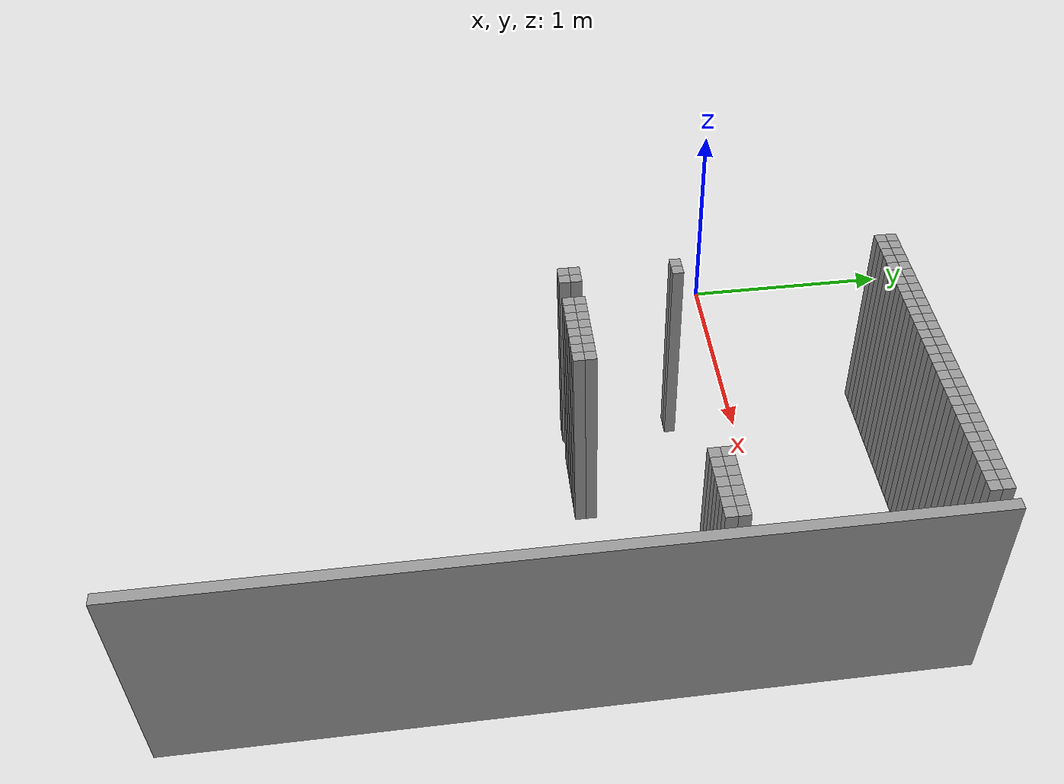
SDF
<sdf version="1.6">
 <model name="optimized_walls">
  <link name="wall_small_52_0">
   <pose>0.8790 0.6800 0.5000 0 0 0</pose>
   <collision name="collision"><geometry><box><size>0.05 0.05 1.0</size></box></geometry></collision>
   <visual name="visual">
    <geometry><box><size>0.05 0.05 1.0</size></box></geometry>
    <material><script><name>Gazebo/Grey</name></script></material>
   </visual>
  </link>
  <link name="wall_small_52_1">
   <pose>0.8790 0.6300 0.5000 0 0 0</pose>
   <collision name="collision"><geometry><box><size>0.05 0.05 1.0</size></box></geometry></collision>
   <visual name="visual">
    <geometry><box><size>0.05 0.05 1.0</size></box></geometry>
    <material><script><name>Gazebo/Grey</name></script></material>
   </visual>
  </link>
  <link name="wall_small_55_0">
   <pose>0.9290 0.6800 0.5000 0 0 0</pose>
   <collision name="collision"><geometry><box><size>0.05 0.05 1.0</size></box></geometry></collision>
   <visual name="visual">
    <geometry><box><size>0.05 0.05 1.0</size></box></geometry>
    <material><script><name>Gazebo/Grey</name></script></material>
   </visual>
  </link>
  <link name="wall_small_55_1">
   <pose>0.9290 0.6300 0.5000 0 0 0</pose>
   <collision name="collision"><geometry><box><size>0.05 0.05 1.0</size></box></geometry></collision>
   <visual name="visual">
    <geometry><box><size>0.05 0.05 1.0</size></box></geometry>
    <material><script><name>Gazebo/Grey</name></script></material>
   </visual>
  </link>
  <link name="wall_small_56_0">
   <pose>0.9290 -0.3200 0.5000 0 0 0</pose>
   <collision name="collision"><geometry><box><size>0.05 0.05 1.0</size></box></geometry></collision>
   <visual name="visual">
    <geometry><box><size>0.05 0.05 1.0</size></box></geometry>
    <material><script><name>Gazebo/Grey</name></script></material>
   </visual>
  </link>
  <link name="wall_small_57_0">
   <pose>0.9290 -0.7700 0.5000 0 0 0</pose>
   <collision name="collision"><geometry><box><size>0.05 0.05 1.0</size></box></geometry></collision>
   <visual name="visual">
    <geometry><box><size>0.05 0.05 1.0</size></box></geometry>
    <material><script><name>Gazebo/Grey</name></script></material>
   </visual>
  </link>
  <link name="wall_small_57_1">
   <pose>0.9290 -0.8200 0.5000 0 0 0</pose>
   <collision name="collision"><geometry><box><size>0.05 0.05 1.0</size></box></geometry></collision>
   <visual name="visual">
    <geometry><box><size>0.05 0.05 1.0</size></box></geometry>
    <material><script><name>Gazebo/Grey</name></script></material>
   </visual>
  </link>
  <link name="wall_small_58_0">
   <pose>0.9790 0.6800 0.5000 0 0 0</pose>
   <collision name="collision"><geometry><box><size>0.05 0.05 1.0</size></box></geometry></collision>
   <visual name="visual">
    <geometry><box><size>0.05 0.05 1.0</size></box></geometry>
    <material><script><name>Gazebo/Grey</name></script></material>
   </visual>
  </link>
  <link name="wall_small_58_1">
   <pose>0.9790 0.6300 0.5000 0 0 0</pose>
   <collision name="collision"><geometry><box><size>0.05 0.05 1.0</size></box></geometry></collision>
   <visual name="visual">
    <geometry><box><size>0.05 0.05 1.0</size></box></geometry>
    <material><script><name>Gazebo/Grey</name></script></material>
   </visual>
  </link>
  <link name="wall_small_59_0">
   <pose>0.9790 -0.3200 0.5000 0 0 0</pose>
   <collision name="collision"><geometry><box><size>0.05 0.05 1.0</size></box></geometry></collision>
   <visual name="visual">
    <geometry><box><size>0.05 0.05 1.0</size></box></geometry>
    <material><script><name>Gazebo/Grey</name></script></material>
   </visual>
  </link>
  <link name="wall_small_60_0">
   <pose>0.9790 -0.7700 0.5000 0 0 0</pose>
   <collision name="collision"><geometry><box><size>0.05 0.05 1.0</size></box></geometry></collision>
   <visual name="visual">
    <geometry><box><size>0.05 0.05 1.0</size></box></geometry>
    <material><script><name>Gazebo/Grey</name></script></material>
   </visual>
  </link>
  <link name="wall_small_60_1">
   <pose>0.9790 -0.8200 0.5000 0 0 0</pose>
   <collision name="collision"><geometry><box><size>0.05 0.05 1.0</size></box></geometry></collision>
   <visual name="visual">
    <geometry><box><size>0.05 0.05 1.0</size></box></geometry>
    <material><script><name>Gazebo/Grey</name></script></material>
   </visual>
  </link>
  <link name="wall_small_61_0">
   <pose>1.0290 0.6800 0.5000 0 0 0</pose>
   <collision name="collision"><geometry><box><size>0.05 0.05 1.0</size></box></geometry></collision>
   <visual name="visual">
    <geometry><box><size>0.05 0.05 1.0</size></box></geometry>
    <material><script><name>Gazebo/Grey</name></script></material>
   </visual>
  </link>
  <link name="wall_small_61_1">
   <pose>1.0290 0.6300 0.5000 0 0 0</pose>
   <collision name="collision"><geometry><box><size>0.05 0.05 1.0</size></box></geometry></collision>
   <visual name="visual">
    <geometry><box><size>0.05 0.05 1.0</size></box></geometry>
    <material><script><name>Gazebo/Grey</name></script></material>
   </visual>
  </link>
  <link name="wall_small_63_0">
   <pose>1.0790 0.6800 0.5000 0 0 0</pose>
   <collision name="collision"><geometry><box><size>0.05 0.05 1.0</size></box></geometry></collision>
   <visual name="visual">
    <geometry><box><size>0.05 0.05 1.0</size></box></geometry>
    <material><script><name>Gazebo/Grey</name></script></material>
   </visual>
  </link>
  <link name="wall_small_63_1">
   <pose>1.0790 0.6300 0.5000 0 0 0</pose>
   <collision name="collision"><geometry><box><size>0.05 0.05 1.0</size></box></geometry></collision>
   <visual name="visual">
    <geometry><box><size>0.05 0.05 1.0</size></box></geometry>
    <material><script><name>Gazebo/Grey</name></script></material>
   </visual>
  </link>
  <link name="wall_small_65_0">
   <pose>1.1290 0.6800 0.5000 0 0 0</pose>
   <collision name="collision"><geometry><box><size>0.05 0.05 1.0</size></box></geometry></collision>
   <visual name="visual">
    <geometry><box><size>0.05 0.05 1.0</size></box></geometry>
    <material><script><name>Gazebo/Grey</name></script></material>
   </visual>
  </link>
  <link name="wall_small_65_1">
   <pose>1.1290 0.6300 0.5000 0 0 0</pose>
   <collision name="collision"><geometry><box><size>0.05 0.05 1.0</size></box></geometry></collision>
   <visual name="visual">
    <geometry><box><size>0.05 0.05 1.0</size></box></geometry>
    <material><script><name>Gazebo/Grey</name></script></material>
   </visual>
  </link>
  <link name="wall_small_66_0">
   <pose>1.1290 -0.7700 0.5000 0 0 0</pose>
   <collision name="collision"><geometry><box><size>0.05 0.05 1.0</size></box></geometry></collision>
   <visual name="visual">
    <geometry><box><size>0.05 0.05 1.0</size></box></geometry>
    <material><script><name>Gazebo/Grey</name></script></material>
   </visual>
  </link>
  <link name="wall_small_66_1">
   <pose>1.1290 -0.8200 0.5000 0 0 0</pose>
   <collision name="collision"><geometry><box><size>0.05 0.05 1.0</size></box></geometry></collision>
   <visual name="visual">
    <geometry><box><size>0.05 0.05 1.0</size></box></geometry>
    <material><script><name>Gazebo/Grey</name></script></material>
   </visual>
  </link>
  <link name="wall_small_69_0">
   <pose>1.1790 0.6800 0.5000 0 0 0</pose>
   <collision name="collision"><geometry><box><size>0.05 0.05 1.0</size></box></geometry></collision>
   <visual name="visual">
    <geometry><box><size>0.05 0.05 1.0</size></box></geometry>
    <material><script><name>Gazebo/Grey</name></script></material>
   </visual>
  </link>
  <link name="wall_small_69_1">
   <pose>1.1790 0.6300 0.5000 0 0 0</pose>
   <collision name="collision"><geometry><box><size>0.05 0.05 1.0</size></box></geometry></collision>
   <visual name="visual">
    <geometry><box><size>0.05 0.05 1.0</size></box></geometry>
    <material><script><name>Gazebo/Grey</name></script></material>
   </visual>
  </link>
  <link name="wall_small_70_0">
   <pose>1.1790 -0.7700 0.5000 0 0 0</pose>
   <collision name="collision"><geometry><box><size>0.05 0.05 1.0</size></box></geometry></collision>
   <visual name="visual">
    <geometry><box><size>0.05 0.05 1.0</size></box></geometry>
    <material><script><name>Gazebo/Grey</name></script></material>
   </visual>
  </link>
  <link name="wall_small_70_1">
   <pose>1.1790 -0.8200 0.5000 0 0 0</pose>
   <collision name="collision"><geometry><box><size>0.05 0.05 1.0</size></box></geometry></collision>
   <visual name="visual">
    <geometry><box><size>0.05 0.05 1.0</size></box></geometry>
    <material><script><name>Gazebo/Grey</name></script></material>
   </visual>
  </link>
  <link name="wall_small_73_0">
   <pose>1.2290 0.6800 0.5000 0 0 0</pose>
   <collision name="collision"><geometry><box><size>0.05 0.05 1.0</size></box></geometry></collision>
   <visual name="visual">
    <geometry><box><size>0.05 0.05 1.0</size></box></geometry>
    <material><script><name>Gazebo/Grey</name></script></material>
   </visual>
  </link>
  <link name="wall_small_73_1">
   <pose>1.2290 0.6300 0.5000 0 0 0</pose>
   <collision name="collision"><geometry><box><size>0.05 0.05 1.0</size></box></geometry></collision>
   <visual name="visual">
    <geometry><box><size>0.05 0.05 1.0</size></box></geometry>
    <material><script><name>Gazebo/Grey</name></script></material>
   </visual>
  </link>
  <link name="wall_small_74_0">
   <pose>1.2290 -0.7700 0.5000 0 0 0</pose>
   <collision name="collision"><geometry><box><size>0.05 0.05 1.0</size></box></geometry></collision>
   <visual name="visual">
    <geometry><box><size>0.05 0.05 1.0</size></box></geometry>
    <material><script><name>Gazebo/Grey</name></script></material>
   </visual>
  </link>
  <link name="wall_small_74_1">
   <pose>1.2290 -0.8200 0.5000 0 0 0</pose>
   <collision name="collision"><geometry><box><size>0.05 0.05 1.0</size></box></geometry></collision>
   <visual name="visual">
    <geometry><box><size>0.05 0.05 1.0</size></box></geometry>
    <material><script><name>Gazebo/Grey</name></script></material>
   </visual>
  </link>
  <link name="wall_small_77_0">
   <pose>1.2790 0.6800 0.5000 0 0 0</pose>
   <collision name="collision"><geometry><box><size>0.05 0.05 1.0</size></box></geometry></collision>
   <visual name="visual">
    <geometry><box><size>0.05 0.05 1.0</size></box></geometry>
    <material><script><name>Gazebo/Grey</name></script></material>
   </visual>
  </link>
  <link name="wall_small_77_1">
   <pose>1.2790 0.6300 0.5000 0 0 0</pose>
   <collision name="collision"><geometry><box><size>0.05 0.05 1.0</size></box></geometry></collision>
   <visual name="visual">
    <geometry><box><size>0.05 0.05 1.0</size></box></geometry>
    <material><script><name>Gazebo/Grey</name></script></material>
   </visual>
  </link>
  <link name="wall_small_78_0">
   <pose>1.2790 -0.7700 0.5000 0 0 0</pose>
   <collision name="collision"><geometry><box><size>0.05 0.05 1.0</size></box></geometry></collision>
   <visual name="visual">
    <geometry><box><size>0.05 0.05 1.0</size></box></geometry>
    <material><script><name>Gazebo/Grey</name></script></material>
   </visual>
  </link>
  <link name="wall_small_78_1">
   <pose>1.2790 -0.8200 0.5000 0 0 0</pose>
   <collision name="collision"><geometry><box><size>0.05 0.05 1.0</size></box></geometry></collision>
   <visual name="visual">
    <geometry><box><size>0.05 0.05 1.0</size></box></geometry>
    <material><script><name>Gazebo/Grey</name></script></material>
   </visual>
  </link>
  <link name="wall_small_81_0">
   <pose>1.3290 0.6800 0.5000 0 0 0</pose>
   <collision name="collision"><geometry><box><size>0.05 0.05 1.0</size></box></geometry></collision>
   <visual name="visual">
    <geometry><box><size>0.05 0.05 1.0</size></box></geometry>
    <material><script><name>Gazebo/Grey</name></script></material>
   </visual>
  </link>
  <link name="wall_small_81_1">
   <pose>1.3290 0.6300 0.5000 0 0 0</pose>
   <collision name="collision"><geometry><box><size>0.05 0.05 1.0</size></box></geometry></collision>
   <visual name="visual">
    <geometry><box><size>0.05 0.05 1.0</size></box></geometry>
    <material><script><name>Gazebo/Grey</name></script></material>
   </visual>
  </link>
  <link name="wall_small_82_0">
   <pose>1.3290 -0.7700 0.5000 0 0 0</pose>
   <collision name="collision"><geometry><box><size>0.05 0.05 1.0</size></box></geometry></collision>
   <visual name="visual">
    <geometry><box><size>0.05 0.05 1.0</size></box></geometry>
    <material><script><name>Gazebo/Grey</name></script></material>
   </visual>
  </link>
  <link name="wall_small_82_1">
   <pose>1.3290 -0.8200 0.5000 0 0 0</pose>
   <collision name="collision"><geometry><box><size>0.05 0.05 1.0</size></box></geometry></collision>
   <visual name="visual">
    <geometry><box><size>0.05 0.05 1.0</size></box></geometry>
    <material><script><name>Gazebo/Grey</name></script></material>
   </visual>
  </link>
  <link name="wall_small_85_0">
   <pose>1.3790 0.6800 0.5000 0 0 0</pose>
   <collision name="collision"><geometry><box><size>0.05 0.05 1.0</size></box></geometry></collision>
   <visual name="visual">
    <geometry><box><size>0.05 0.05 1.0</size></box></geometry>
    <material><script><name>Gazebo/Grey</name></script></material>
   </visual>
  </link>
  <link name="wall_small_85_1">
   <pose>1.3790 0.6300 0.5000 0 0 0</pose>
   <collision name="collision"><geometry><box><size>0.05 0.05 1.0</size></box></geometry></collision>
   <visual name="visual">
    <geometry><box><size>0.05 0.05 1.0</size></box></geometry>
    <material><script><name>Gazebo/Grey</name></script></material>
   </visual>
  </link>
  <link name="wall_small_86_0">
   <pose>1.3790 -0.7700 0.5000 0 0 0</pose>
   <collision name="collision"><geometry><box><size>0.05 0.05 1.0</size></box></geometry></collision>
   <visual name="visual">
    <geometry><box><size>0.05 0.05 1.0</size></box></geometry>
    <material><script><name>Gazebo/Grey</name></script></material>
   </visual>
  </link>
  <link name="wall_small_86_1">
   <pose>1.3790 -0.8200 0.5000 0 0 0</pose>
   <collision name="collision"><geometry><box><size>0.05 0.05 1.0</size></box></geometry></collision>
   <visual name="visual">
    <geometry><box><size>0.05 0.05 1.0</size></box></geometry>
    <material><script><name>Gazebo/Grey</name></script></material>
   </visual>
  </link>
  <link name="wall_small_89_0">
   <pose>1.4290 0.6800 0.5000 0 0 0</pose>
   <collision name="collision"><geometry><box><size>0.05 0.05 1.0</size></box></geometry></collision>
   <visual name="visual">
    <geometry><box><size>0.05 0.05 1.0</size></box></geometry>
    <material><script><name>Gazebo/Grey</name></script></material>
   </visual>
  </link>
  <link name="wall_small_89_1">
   <pose>1.4290 0.6300 0.5000 0 0 0</pose>
   <collision name="collision"><geometry><box><size>0.05 0.05 1.0</size></box></geometry></collision>
   <visual name="visual">
    <geometry><box><size>0.05 0.05 1.0</size></box></geometry>
    <material><script><name>Gazebo/Grey</name></script></material>
   </visual>
  </link>
  <link name="wall_small_90_0">
   <pose>1.4290 -0.7700 0.5000 0 0 0</pose>
   <collision name="collision"><geometry><box><size>0.05 0.05 1.0</size></box></geometry></collision>
   <visual name="visual">
    <geometry><box><size>0.05 0.05 1.0</size></box></geometry>
    <material><script><name>Gazebo/Grey</name></script></material>
   </visual>
  </link>
  <link name="wall_small_90_1">
   <pose>1.4290 -0.8200 0.5000 0 0 0</pose>
   <collision name="collision"><geometry><box><size>0.05 0.05 1.0</size></box></geometry></collision>
   <visual name="visual">
    <geometry><box><size>0.05 0.05 1.0</size></box></geometry>
    <material><script><name>Gazebo/Grey</name></script></material>
   </visual>
  </link>
  <link name="wall_small_93_0">
   <pose>1.4790 0.6800 0.5000 0 0 0</pose>
   <collision name="collision"><geometry><box><size>0.05 0.05 1.0</size></box></geometry></collision>
   <visual name="visual">
    <geometry><box><size>0.05 0.05 1.0</size></box></geometry>
    <material><script><name>Gazebo/Grey</name></script></material>
   </visual>
  </link>
  <link name="wall_small_93_1">
   <pose>1.4790 0.6300 0.5000 0 0 0</pose>
   <collision name="collision"><geometry><box><size>0.05 0.05 1.0</size></box></geometry></collision>
   <visual name="visual">
    <geometry><box><size>0.05 0.05 1.0</size></box></geometry>
    <material><script><name>Gazebo/Grey</name></script></material>
   </visual>
  </link>
  <link name="wall_small_94_0">
   <pose>1.4790 -0.7700 0.5000 0 0 0</pose>
   <collision name="collision"><geometry><box><size>0.05 0.05 1.0</size></box></geometry></collision>
   <visual name="visual">
    <geometry><box><size>0.05 0.05 1.0</size></box></geometry>
    <material><script><name>Gazebo/Grey</name></script></material>
   </visual>
  </link>
  <link name="wall_small_94_1">
   <pose>1.4790 -0.8200 0.5000 0 0 0</pose>
   <collision name="collision"><geometry><box><size>0.05 0.05 1.0</size></box></geometry></collision>
   <visual name="visual">
    <geometry><box><size>0.05 0.05 1.0</size></box></geometry>
    <material><script><name>Gazebo/Grey</name></script></material>
   </visual>
  </link>
  <link name="wall_small_97_0">
   <pose>1.5290 0.6800 0.5000 0 0 0</pose>
   <collision name="collision"><geometry><box><size>0.05 0.05 1.0</size></box></geometry></collision>
   <visual name="visual">
    <geometry><box><size>0.05 0.05 1.0</size></box></geometry>
    <material><script><name>Gazebo/Grey</name></script></material>
   </visual>
  </link>
  <link name="wall_small_97_1">
   <pose>1.5290 0.6300 0.5000 0 0 0</pose>
   <collision name="collision"><geometry><box><size>0.05 0.05 1.0</size></box></geometry></collision>
   <visual name="visual">
    <geometry><box><size>0.05 0.05 1.0</size></box></geometry>
    <material><script><name>Gazebo/Grey</name></script></material>
   </visual>
  </link>
  <link name="wall_small_99_0">
   <pose>1.5790 0.6800 0.5000 0 0 0</pose>
   <collision name="collision"><geometry><box><size>0.05 0.05 1.0</size></box></geometry></collision>
   <visual name="visual">
    <geometry><box><size>0.05 0.05 1.0</size></box></geometry>
    <material><script><name>Gazebo/Grey</name></script></material>
   </visual>
  </link>
  <link name="wall_small_99_1">
   <pose>1.5790 0.6300 0.5000 0 0 0</pose>
   <collision name="collision"><geometry><box><size>0.05 0.05 1.0</size></box></geometry></collision>
   <visual name="visual">
    <geometry><box><size>0.05 0.05 1.0</size></box></geometry>
    <material><script><name>Gazebo/Grey</name></script></material>
   </visual>
  </link>
  <link name="wall_small_101_0">
   <pose>1.6290 0.6800 0.5000 0 0 0</pose>
   <collision name="collision"><geometry><box><size>0.05 0.05 1.0</size></box></geometry></collision>
   <visual name="visual">
    <geometry><box><size>0.05 0.05 1.0</size></box></geometry>
    <material><script><name>Gazebo/Grey</name></script></material>
   </visual>
  </link>
  <link name="wall_small_101_1">
   <pose>1.6290 0.6300 0.5000 0 0 0</pose>
   <collision name="collision"><geometry><box><size>0.05 0.05 1.0</size></box></geometry></collision>
   <visual name="visual">
    <geometry><box><size>0.05 0.05 1.0</size></box></geometry>
    <material><script><name>Gazebo/Grey</name></script></material>
   </visual>
  </link>
  <link name="wall_small_103_0">
   <pose>1.6790 0.6800 0.5000 0 0 0</pose>
   <collision name="collision"><geometry><box><size>0.05 0.05 1.0</size></box></geometry></collision>
   <visual name="visual">
    <geometry><box><size>0.05 0.05 1.0</size></box></geometry>
    <material><script><name>Gazebo/Grey</name></script></material>
   </visual>
  </link>
  <link name="wall_small_103_1">
   <pose>1.6790 0.6300 0.5000 0 0 0</pose>
   <collision name="collision"><geometry><box><size>0.05 0.05 1.0</size></box></geometry></collision>
   <visual name="visual">
    <geometry><box><size>0.05 0.05 1.0</size></box></geometry>
    <material><script><name>Gazebo/Grey</name></script></material>
   </visual>
  </link>
  <link name="wall_small_105_0">
   <pose>1.7290 0.6800 0.5000 0 0 0</pose>
   <collision name="collision"><geometry><box><size>0.05 0.05 1.0</size></box></geometry></collision>
   <visual name="visual">
    <geometry><box><size>0.05 0.05 1.0</size></box></geometry>
    <material><script><name>Gazebo/Grey</name></script></material>
   </visual>
  </link>
  <link name="wall_small_105_1">
   <pose>1.7290 0.6300 0.5000 0 0 0</pose>
   <collision name="collision"><geometry><box><size>0.05 0.05 1.0</size></box></geometry></collision>
   <visual name="visual">
    <geometry><box><size>0.05 0.05 1.0</size></box></geometry>
    <material><script><name>Gazebo/Grey</name></script></material>
   </visual>
  </link>
  <link name="wall_small_107_0">
   <pose>1.7790 0.6800 0.5000 0 0 0</pose>
   <collision name="collision"><geometry><box><size>0.05 0.05 1.0</size></box></geometry></collision>
   <visual name="visual">
    <geometry><box><size>0.05 0.05 1.0</size></box></geometry>
    <material><script><name>Gazebo/Grey</name></script></material>
   </visual>
  </link>
  <link name="wall_small_107_1">
   <pose>1.7790 0.6300 0.5000 0 0 0</pose>
   <collision name="collision"><geometry><box><size>0.05 0.05 1.0</size></box></geometry></collision>
   <visual name="visual">
    <geometry><box><size>0.05 0.05 1.0</size></box></geometry>
    <material><script><name>Gazebo/Grey</name></script></material>
   </visual>
  </link>
  <link name="wall_small_109_0">
   <pose>1.8290 0.6800 0.5000 0 0 0</pose>
   <collision name="collision"><geometry><box><size>0.05 0.05 1.0</size></box></geometry></collision>
   <visual name="visual">
    <geometry><box><size>0.05 0.05 1.0</size></box></geometry>
    <material><script><name>Gazebo/Grey</name></script></material>
   </visual>
  </link>
  <link name="wall_small_109_1">
   <pose>1.8290 0.6300 0.5000 0 0 0</pose>
   <collision name="collision"><geometry><box><size>0.05 0.05 1.0</size></box></geometry></collision>
   <visual name="visual">
    <geometry><box><size>0.05 0.05 1.0</size></box></geometry>
    <material><script><name>Gazebo/Grey</name></script></material>
   </visual>
  </link>
  <link name="wall_small_111_0">
   <pose>1.8790 0.6800 0.5000 0 0 0</pose>
   <collision name="collision"><geometry><box><size>0.05 0.05 1.0</size></box></geometry></collision>
   <visual name="visual">
    <geometry><box><size>0.05 0.05 1.0</size></box></geometry>
    <material><script><name>Gazebo/Grey</name></script></material>
   </visual>
  </link>
  <link name="wall_small_111_1">
   <pose>1.8790 0.6300 0.5000 0 0 0</pose>
   <collision name="collision"><geometry><box><size>0.05 0.05 1.0</size></box></geometry></collision>
   <visual name="visual">
    <geometry><box><size>0.05 0.05 1.0</size></box></geometry>
    <material><script><name>Gazebo/Grey</name></script></material>
   </visual>
  </link>
  <link name="wall_small_113_0">
   <pose>1.9290 0.6800 0.5000 0 0 0</pose>
   <collision name="collision"><geometry><box><size>0.05 0.05 1.0</size></box></geometry></collision>
   <visual name="visual">
    <geometry><box><size>0.05 0.05 1.0</size></box></geometry>
    <material><script><name>Gazebo/Grey</name></script></material>
   </visual>
  </link>
  <link name="wall_small_113_1">
   <pose>1.9290 0.6300 0.5000 0 0 0</pose>
   <collision name="collision"><geometry><box><size>0.05 0.05 1.0</size></box></geometry></collision>
   <visual name="visual">
    <geometry><box><size>0.05 0.05 1.0</size></box></geometry>
    <material><script><name>Gazebo/Grey</name></script></material>
   </visual>
  </link>
  <link name="wall_small_115_0">
   <pose>1.9790 0.6800 0.5000 0 0 0</pose>
   <collision name="collision"><geometry><box><size>0.05 0.05 1.0</size></box></geometry></collision>
   <visual name="visual">
    <geometry><box><size>0.05 0.05 1.0</size></box></geometry>
    <material><script><name>Gazebo/Grey</name></script></material>
   </visual>
  </link>
  <link name="wall_small_115_1">
   <pose>1.9790 0.6300 0.5000 0 0 0</pose>
   <collision name="collision"><geometry><box><size>0.05 0.05 1.0</size></box></geometry></collision>
   <visual name="visual">
    <geometry><box><size>0.05 0.05 1.0</size></box></geometry>
    <material><script><name>Gazebo/Grey</name></script></material>
   </visual>
  </link>
  <link name="wall_small_117_0">
   <pose>2.0290 0.6800 0.5000 0 0 0</pose>
   <collision name="collision"><geometry><box><size>0.05 0.05 1.0</size></box></geometry></collision>
   <visual name="visual">
    <geometry><box><size>0.05 0.05 1.0</size></box></geometry>
    <material><script><name>Gazebo/Grey</name></script></material>
   </visual>
  </link>
  <link name="wall_small_117_1">
   <pose>2.0290 0.6300 0.5000 0 0 0</pose>
   <collision name="collision"><geometry><box><size>0.05 0.05 1.0</size></box></geometry></collision>
   <visual name="visual">
    <geometry><box><size>0.05 0.05 1.0</size></box></geometry>
    <material><script><name>Gazebo/Grey</name></script></material>
   </visual>
  </link>
  <link name="wall_small_119_0">
   <pose>2.0790 0.6800 0.5000 0 0 0</pose>
   <collision name="collision"><geometry><box><size>0.05 0.05 1.0</size></box></geometry></collision>
   <visual name="visual">
    <geometry><box><size>0.05 0.05 1.0</size></box></geometry>
    <material><script><name>Gazebo/Grey</name></script></material>
   </visual>
  </link>
  <link name="wall_small_119_1">
   <pose>2.0790 0.6300 0.5000 0 0 0</pose>
   <collision name="collision"><geometry><box><size>0.05 0.05 1.0</size></box></geometry></collision>
   <visual name="visual">
    <geometry><box><size>0.05 0.05 1.0</size></box></geometry>
    <material><script><name>Gazebo/Grey</name></script></material>
   </visual>
  </link>
  <link name="wall_small_120_0">
   <pose>2.0790 -0.3200 0.5000 0 0 0</pose>
   <collision name="collision"><geometry><box><size>0.05 0.05 1.0</size></box></geometry></collision>
   <visual name="visual">
    <geometry><box><size>0.05 0.05 1.0</size></box></geometry>
    <material><script><name>Gazebo/Grey</name></script></material>
   </visual>
  </link>
  <link name="wall_small_120_1">
   <pose>2.0790 -0.3700 0.5000 0 0 0</pose>
   <collision name="collision"><geometry><box><size>0.05 0.05 1.0</size></box></geometry></collision>
   <visual name="visual">
    <geometry><box><size>0.05 0.05 1.0</size></box></geometry>
    <material><script><name>Gazebo/Grey</name></script></material>
   </visual>
  </link>
  <link name="wall_small_124_0">
   <pose>2.1290 0.6800 0.5000 0 0 0</pose>
   <collision name="collision"><geometry><box><size>0.05 0.05 1.0</size></box></geometry></collision>
   <visual name="visual">
    <geometry><box><size>0.05 0.05 1.0</size></box></geometry>
    <material><script><name>Gazebo/Grey</name></script></material>
   </visual>
  </link>
  <link name="wall_small_124_1">
   <pose>2.1290 0.6300 0.5000 0 0 0</pose>
   <collision name="collision"><geometry><box><size>0.05 0.05 1.0</size></box></geometry></collision>
   <visual name="visual">
    <geometry><box><size>0.05 0.05 1.0</size></box></geometry>
    <material><script><name>Gazebo/Grey</name></script></material>
   </visual>
  </link>
  <link name="wall_small_125_0">
   <pose>2.1290 -0.3200 0.5000 0 0 0</pose>
   <collision name="collision"><geometry><box><size>0.05 0.05 1.0</size></box></geometry></collision>
   <visual name="visual">
    <geometry><box><size>0.05 0.05 1.0</size></box></geometry>
    <material><script><name>Gazebo/Grey</name></script></material>
   </visual>
  </link>
  <link name="wall_small_125_1">
   <pose>2.1290 -0.3700 0.5000 0 0 0</pose>
   <collision name="collision"><geometry><box><size>0.05 0.05 1.0</size></box></geometry></collision>
   <visual name="visual">
    <geometry><box><size>0.05 0.05 1.0</size></box></geometry>
    <material><script><name>Gazebo/Grey</name></script></material>
   </visual>
  </link>
  <link name="wall_small_129_0">
   <pose>2.1790 0.6800 0.5000 0 0 0</pose>
   <collision name="collision"><geometry><box><size>0.05 0.05 1.0</size></box></geometry></collision>
   <visual name="visual">
    <geometry><box><size>0.05 0.05 1.0</size></box></geometry>
    <material><script><name>Gazebo/Grey</name></script></material>
   </visual>
  </link>
  <link name="wall_small_129_1">
   <pose>2.1790 0.6300 0.5000 0 0 0</pose>
   <collision name="collision"><geometry><box><size>0.05 0.05 1.0</size></box></geometry></collision>
   <visual name="visual">
    <geometry><box><size>0.05 0.05 1.0</size></box></geometry>
    <material><script><name>Gazebo/Grey</name></script></material>
   </visual>
  </link>
  <link name="wall_small_130_0">
   <pose>2.1790 -0.3200 0.5000 0 0 0</pose>
   <collision name="collision"><geometry><box><size>0.05 0.05 1.0</size></box></geometry></collision>
   <visual name="visual">
    <geometry><box><size>0.05 0.05 1.0</size></box></geometry>
    <material><script><name>Gazebo/Grey</name></script></material>
   </visual>
  </link>
  <link name="wall_small_130_1">
   <pose>2.1790 -0.3700 0.5000 0 0 0</pose>
   <collision name="collision"><geometry><box><size>0.05 0.05 1.0</size></box></geometry></collision>
   <visual name="visual">
    <geometry><box><size>0.05 0.05 1.0</size></box></geometry>
    <material><script><name>Gazebo/Grey</name></script></material>
   </visual>
  </link>
  <link name="wall_small_134_0">
   <pose>2.2290 0.6800 0.5000 0 0 0</pose>
   <collision name="collision"><geometry><box><size>0.05 0.05 1.0</size></box></geometry></collision>
   <visual name="visual">
    <geometry><box><size>0.05 0.05 1.0</size></box></geometry>
    <material><script><name>Gazebo/Grey</name></script></material>
   </visual>
  </link>
  <link name="wall_small_134_1">
   <pose>2.2290 0.6300 0.5000 0 0 0</pose>
   <collision name="collision"><geometry><box><size>0.05 0.05 1.0</size></box></geometry></collision>
   <visual name="visual">
    <geometry><box><size>0.05 0.05 1.0</size></box></geometry>
    <material><script><name>Gazebo/Grey</name></script></material>
   </visual>
  </link>
  <link name="wall_small_135_0">
   <pose>2.2290 -0.3200 0.5000 0 0 0</pose>
   <collision name="collision"><geometry><box><size>0.05 0.05 1.0</size></box></geometry></collision>
   <visual name="visual">
    <geometry><box><size>0.05 0.05 1.0</size></box></geometry>
    <material><script><name>Gazebo/Grey</name></script></material>
   </visual>
  </link>
  <link name="wall_small_135_1">
   <pose>2.2290 -0.3700 0.5000 0 0 0</pose>
   <collision name="collision"><geometry><box><size>0.05 0.05 1.0</size></box></geometry></collision>
   <visual name="visual">
    <geometry><box><size>0.05 0.05 1.0</size></box></geometry>
    <material><script><name>Gazebo/Grey</name></script></material>
   </visual>
  </link>
  <link name="wall_small_139_0">
   <pose>2.2790 0.6800 0.5000 0 0 0</pose>
   <collision name="collision"><geometry><box><size>0.05 0.05 1.0</size></box></geometry></collision>
   <visual name="visual">
    <geometry><box><size>0.05 0.05 1.0</size></box></geometry>
    <material><script><name>Gazebo/Grey</name></script></material>
   </visual>
  </link>
  <link name="wall_small_139_1">
   <pose>2.2790 0.6300 0.5000 0 0 0</pose>
   <collision name="collision"><geometry><box><size>0.05 0.05 1.0</size></box></geometry></collision>
   <visual name="visual">
    <geometry><box><size>0.05 0.05 1.0</size></box></geometry>
    <material><script><name>Gazebo/Grey</name></script></material>
   </visual>
  </link>
  <link name="wall_small_140_0">
   <pose>2.2790 -0.3200 0.5000 0 0 0</pose>
   <collision name="collision"><geometry><box><size>0.05 0.05 1.0</size></box></geometry></collision>
   <visual name="visual">
    <geometry><box><size>0.05 0.05 1.0</size></box></geometry>
    <material><script><name>Gazebo/Grey</name></script></material>
   </visual>
  </link>
  <link name="wall_small_140_1">
   <pose>2.2790 -0.3700 0.5000 0 0 0</pose>
   <collision name="collision"><geometry><box><size>0.05 0.05 1.0</size></box></geometry></collision>
   <visual name="visual">
    <geometry><box><size>0.05 0.05 1.0</size></box></geometry>
    <material><script><name>Gazebo/Grey</name></script></material>
   </visual>
  </link>
  <link name="wall_small_144_0">
   <pose>2.3290 0.6800 0.5000 0 0 0</pose>
   <collision name="collision"><geometry><box><size>0.05 0.05 1.0</size></box></geometry></collision>
   <visual name="visual">
    <geometry><box><size>0.05 0.05 1.0</size></box></geometry>
    <material><script><name>Gazebo/Grey</name></script></material>
   </visual>
  </link>
  <link name="wall_small_144_1">
   <pose>2.3290 0.6300 0.5000 0 0 0</pose>
   <collision name="collision"><geometry><box><size>0.05 0.05 1.0</size></box></geometry></collision>
   <visual name="visual">
    <geometry><box><size>0.05 0.05 1.0</size></box></geometry>
    <material><script><name>Gazebo/Grey</name></script></material>
   </visual>
  </link>
  <link name="wall_small_145_0">
   <pose>2.3290 -0.3200 0.5000 0 0 0</pose>
   <collision name="collision"><geometry><box><size>0.05 0.05 1.0</size></box></geometry></collision>
   <visual name="visual">
    <geometry><box><size>0.05 0.05 1.0</size></box></geometry>
    <material><script><name>Gazebo/Grey</name></script></material>
   </visual>
  </link>
  <link name="wall_small_145_1">
   <pose>2.3290 -0.3700 0.5000 0 0 0</pose>
   <collision name="collision"><geometry><box><size>0.05 0.05 1.0</size></box></geometry></collision>
   <visual name="visual">
    <geometry><box><size>0.05 0.05 1.0</size></box></geometry>
    <material><script><name>Gazebo/Grey</name></script></material>
   </visual>
  </link>
  <link name="wall_small_149_0">
   <pose>2.3790 0.6800 0.5000 0 0 0</pose>
   <collision name="collision"><geometry><box><size>0.05 0.05 1.0</size></box></geometry></collision>
   <visual name="visual">
    <geometry><box><size>0.05 0.05 1.0</size></box></geometry>
    <material><script><name>Gazebo/Grey</name></script></material>
   </visual>
  </link>
  <link name="wall_small_149_1">
   <pose>2.3790 0.6300 0.5000 0 0 0</pose>
   <collision name="collision"><geometry><box><size>0.05 0.05 1.0</size></box></geometry></collision>
   <visual name="visual">
    <geometry><box><size>0.05 0.05 1.0</size></box></geometry>
    <material><script><name>Gazebo/Grey</name></script></material>
   </visual>
  </link>
  <link name="wall_small_150_0">
   <pose>2.3790 -0.3200 0.5000 0 0 0</pose>
   <collision name="collision"><geometry><box><size>0.05 0.05 1.0</size></box></geometry></collision>
   <visual name="visual">
    <geometry><box><size>0.05 0.05 1.0</size></box></geometry>
    <material><script><name>Gazebo/Grey</name></script></material>
   </visual>
  </link>
  <link name="wall_small_150_1">
   <pose>2.3790 -0.3700 0.5000 0 0 0</pose>
   <collision name="collision"><geometry><box><size>0.05 0.05 1.0</size></box></geometry></collision>
   <visual name="visual">
    <geometry><box><size>0.05 0.05 1.0</size></box></geometry>
    <material><script><name>Gazebo/Grey</name></script></material>
   </visual>
  </link>
  <link name="wall_large_155">
   <pose>2.4790 -0.9700 0.5000 0 0 0</pose>
   <collision name="collision"><geometry><box><size>0.0500 3.3500 1.0</size></box></geometry></collision>
   <visual name="visual">
    <geometry><box><size>0.0500 3.3500 1.0</size></box></geometry>
    <material><script><name>Gazebo/Grey</name></script></material>
   </visual>
  </link>
 </model>
</sdf>
